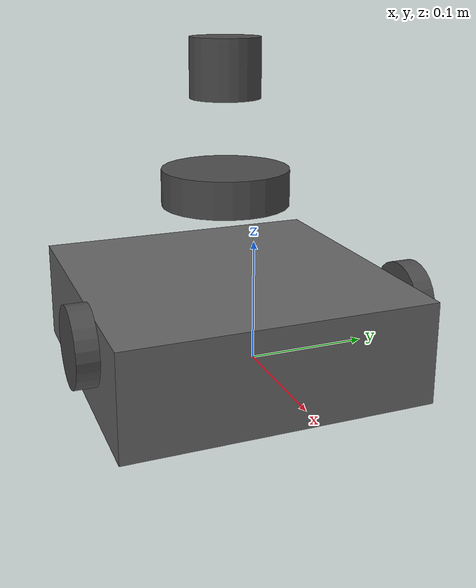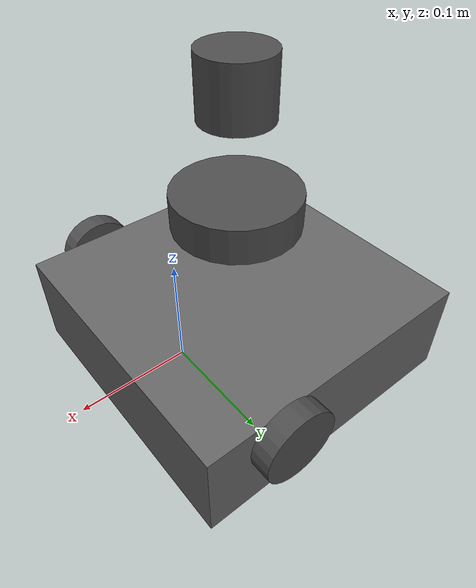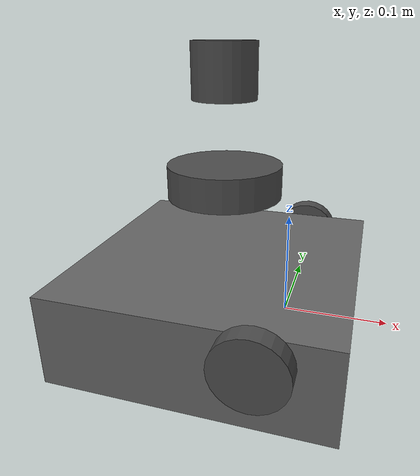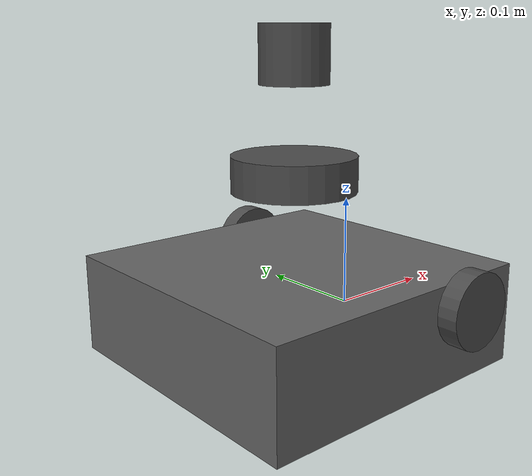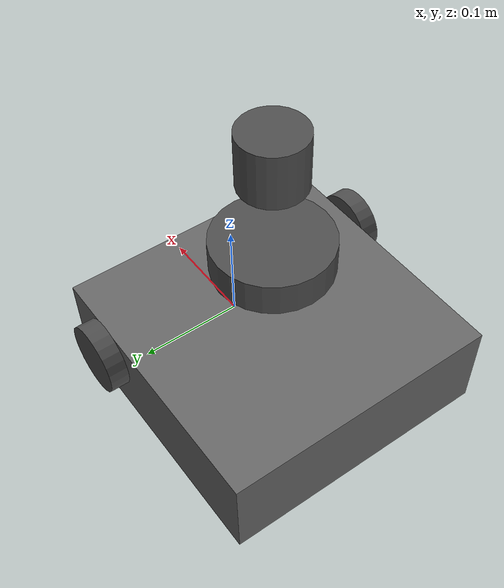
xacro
<?xml version="1.0"?>
<robot name="turtlebot3_waffle_dual_lidar" xmlns:xacro="http://www.ros.org/wiki/xacro">

   <!-- Base Footprint -->
    <link name="base_footprint"/>

    <joint name="base_joint" type="fixed">
        <parent link="base_footprint"/>
        <child link="base_link"/>
        <origin xyz="0 0 0.010" rpy="0 0 0"/>
    </joint>

    <!-- Base Link -->
    <link name="base_link">
        <visual>
            <origin xyz="-0.064 0 0.0" rpy="0 0 0"/>
            <geometry>
                <box size="0.265 0.265 0.089"/>
            </geometry>
            <material name="light_black"/>
        </visual>
        <collision>
            <origin xyz="-0.064 0 0.0" rpy="0 0 0"/>
            <geometry>
                <box size="0.265 0.265 0.089"/>
            </geometry>
        </collision>
        <inertial>
            <origin xyz="0 0 0" rpy="0 0 0"/>
            <mass value="1.0"/>
            <inertia ixx="0.01" ixy="0.0" ixz="0.0"
                     iyy="0.01" iyz="0.0"
                     izz="0.01" />
        </inertial>
    </link>

    <!-- Wheel Joints and Links -->
    <joint name="wheel_left_joint" type="continuous">
        <parent link="base_link"/>
        <child link="wheel_left_link"/>
        <origin xyz="0 0.144 0.023" rpy="-1.57 0 0"/>
        <axis xyz="0 0 1"/>
    </joint>

    <link name="wheel_left_link">
        <visual>
            <geometry>
                <cylinder length="0.018" radius="0.033"/>
            </geometry>
            <material name="dark"/>
        </visual>
        <collision>
            <geometry>
                <cylinder length="0.018" radius="0.033"/>
            </geometry>
        </collision>
        <inertial>
            <mass value="0.05"/>
            <inertia ixx="0.001" ixy="0.0" ixz="0.0"
                     iyy="0.001" iyz="0.0"
                     izz="0.001"/>
        </inertial>
    </link>

    <joint name="wheel_right_joint" type="continuous">
        <parent link="base_link"/>
        <child link="wheel_right_link"/>
        <origin xyz="0 -0.144 0.023" rpy="-1.57 0 0"/>
        <axis xyz="0 0 1"/>
    </joint>

    <link name="wheel_right_link">
        <visual>
            <geometry>
                <cylinder length="0.018" radius="0.033"/>
            </geometry>
            <material name="dark"/>
        </visual>
        <collision>
            <geometry>
                <cylinder length="0.018" radius="0.033"/>
            </geometry>
        </collision>
        <inertial>
            <mass value="0.05"/>
            <inertia ixx="0.001" ixy="0.0" ixz="0.0"
                     iyy="0.001" iyz="0.0"
                     izz="0.001"/>
        </inertial>
    </link>

    <!-- Caster wheel -->
    <joint name="caster_back_joint" type="fixed">
        <parent link="base_link"/>
        <child link="caster_back_link"/>
        <origin xyz="-0.177 0 0.006" rpy="-1.57 0 0"/>
    </joint>

    <link name="caster_back_link">
        <collision>
            <geometry>
                <box size="0.030 0.010 0.020"/>
            </geometry>
        </collision>
        <inertial>
            <mass value="0.01"/>
            <inertia ixx="0.001" ixy="0.0" ixz="0.0"
                     iyy="0.001" iyz="0.0"
                     izz="0.001"/>
        </inertial>
    </link>

    <!-- Original 2D LIDAR Joint and Link -->
    <joint name="scan_joint" type="fixed">
        <parent link="base_link"/>
        <child link="base_scan"/>
        <origin xyz="-0.064 0 0.122" rpy="0 0 0"/>
    </joint>

    <link name="base_scan">
        <visual>
            <origin xyz="0 0 0" rpy="0 0 0"/>
            <geometry>
                <cylinder length="0.0315" radius="0.055"/>
            </geometry>
            <material name="dark"/>
        </visual>
        <collision>
            <origin xyz="0 0 0" rpy="0 0 0"/>
            <geometry>
                <cylinder length="0.0315" radius="0.055"/>
            </geometry>
        </collision>
        <inertial>
            <mass value="0.114"/>
            <origin xyz="0 0 0"/>
            <inertia ixx="0.001" ixy="0" ixz="0"
                    iyy="0.001" iyz="0"
                    izz="0.001"/>
        </inertial>
    </link>

    <!-- 3D LIDAR Joint & Link -->
<joint name="lidar_3d_joint" type="fixed">
    <parent link="base_link"/>
    <child link="lidar_3d"/>
    <origin xyz="-0.064 0 0.222" rpy="0 0 0"/>
</joint>

<link name="lidar_3d">
    <visual>
        <origin xyz="0 0 0" rpy="0 0 0"/>
        <geometry>
            <cylinder radius="0.03" length="0.05"/>
        </geometry>
        <material name="dark"/>
    </visual>
    <collision>
        <origin xyz="0 0 0" rpy="0 0 0"/>
        <geometry>
            <cylinder radius="0.03" length="0.05"/>
        </geometry>
    </collision>
    <inertial>
        <mass value="0.12"/>
        <origin xyz="0 0 0" rpy="0 0 0"/>
        <inertia ixx="1e-4" ixy="1e-5" ixz="1e-5"
                 iyy="1e-4" iyz="1e-5"
                 izz="5e-5"/>
    </inertial>
</link>
    <!-- Define materials -->
    <material name="black">
        <color rgba="0.0 0.0 0.0 1.0"/>
    </material>

    <material name="dark">
        <color rgba="0.3 0.3 0.3 1.0"/>
    </material>

    <material name="light_black">
        <color rgba="0.4 0.4 0.4 1.0"/>
    </material>

    <!-- Gazebo plugin for 2D LIDAR -->
    <gazebo reference="base_scan">
        <material>Gazebo/DarkGrey</material>
    <sensor type="ray" name="velodyne_3d_sensor">
            <pose>0 0 0 0 0 0</pose>
            <visualize>false</visualize>
            <update_rate>5</update_rate>
            <ray>
                <scan>
                    <horizontal>
                        <samples>360</samples>
                        <resolution>1</resolution>
                        <min_angle>0.0</min_angle>
                        <max_angle>6.28319</max_angle>
                    </horizontal>
                </scan>
                <range>
                    <min>0.120</min>
                    <max>3.5</max>
                    <resolution>0.015</resolution>
                </range>
            </ray>
         <plugin name="gazebo_ros_velodyne_3d_controller" filename="libgazebo_ros_velodyne_laser.so">
            <ros>
                <namespace>/</namespace>
                <remapping>~/out:=scan_3d</remapping>
            </ros>
            <frame_name>lidar_3d</frame_name>
            <organize_cloud>true</organize_cloud>
            <min_range>0.1</min_range>
            <max_range>30.0</max_range>
            <gaussian_noise>0.008</gaussian_noise>
        </plugin>
    </sensor>
    </gazebo>

  <!-- 3D LIDAR Gazebo Plugin -->
    <gazebo reference="lidar_3d">
        <material>Gazebo/DarkGrey</material>
        <sensor type="ray" name="lidar_3d_sensor">
            <pose>0 0 0 0 0 0</pose>
            <visualize>true</visualize>
            <update_rate>10</update_rate>
            <ray>
                <scan>
                    <horizontal>
                        <samples>360</samples>
                        <resolution>1</resolution>
                        <min_angle>-3.14159</min_angle>
                        <max_angle>3.14159</max_angle>
                    </horizontal>
                    <vertical>
                        <samples>16</samples>
                        <resolution>1</resolution>
                        <min_angle>-0.2617994</min_angle>
                        <max_angle>0.2617994</max_angle>
                    </vertical>
                </scan>
                <range>
                    <min>0.1</min>
                    <max>30.0</max>
                    <resolution>0.01</resolution>
                </range>
            </ray>
            <plugin name="gazebo_ros_lidar3d_controller" filename="libgazebo_ros_ray_sensor.so">
                <ros>
                    <namespace>/</namespace>
                    <remapping>~/out:=scan_3d</remapping>
                </ros>
                <frame_name>lidar_3d</frame_name>
                <organize_cloud>true</organize_cloud>
                <output_type>sensor_msgs/PointCloud2</output_type>
                <min_range>0.1</min_range>
                <max_range>30.0</max_range>
            </plugin>
        </sensor>
    </gazebo>

    <!-- Define materials -->
    <material name="black">
        <color rgba="0.0 0.0 0.0 1.0"/>
    </material>

    <material name="dark">
        <color rgba="0.3 0.3 0.3 1.0"/>
    </material>

    <material name="light_black">
        <color rgba="0.4 0.4 0.4 1.0"/>
    </material>

</robot>
